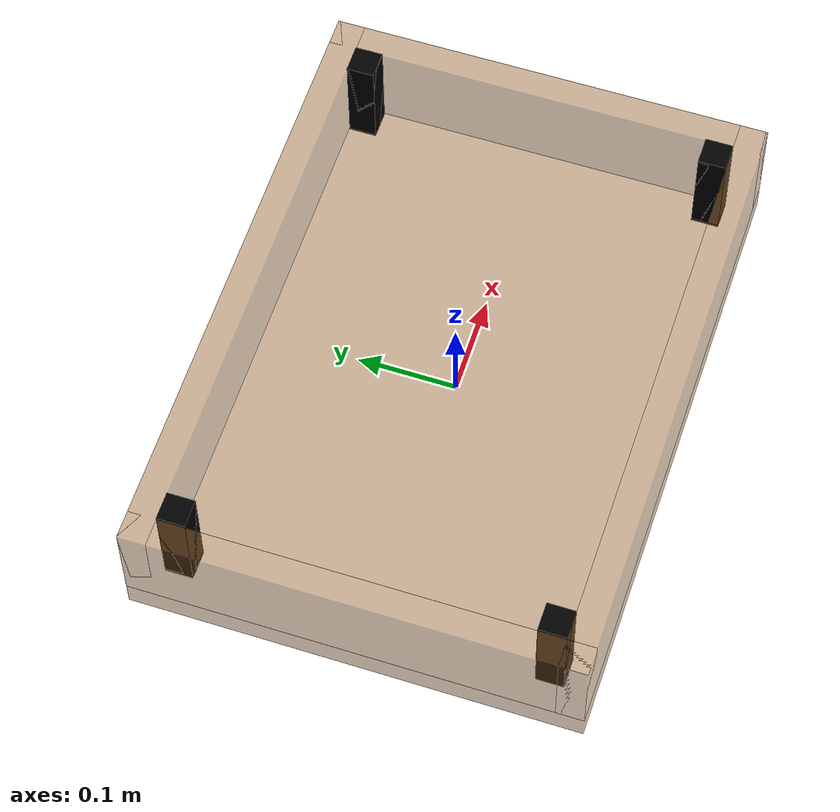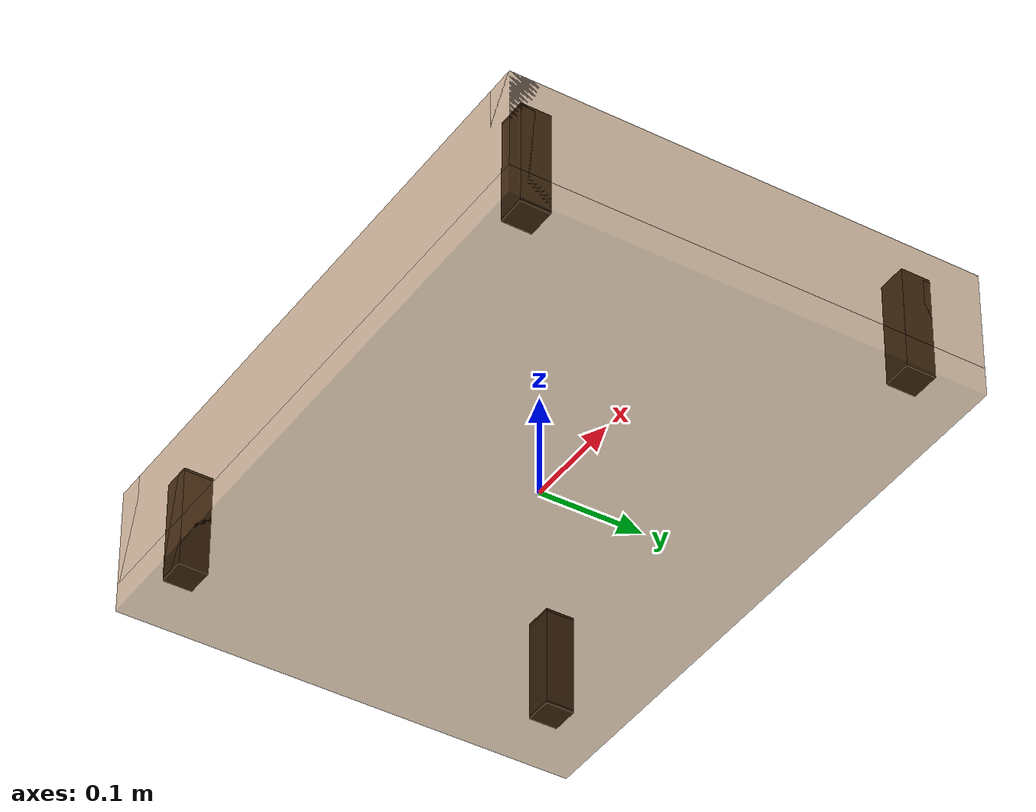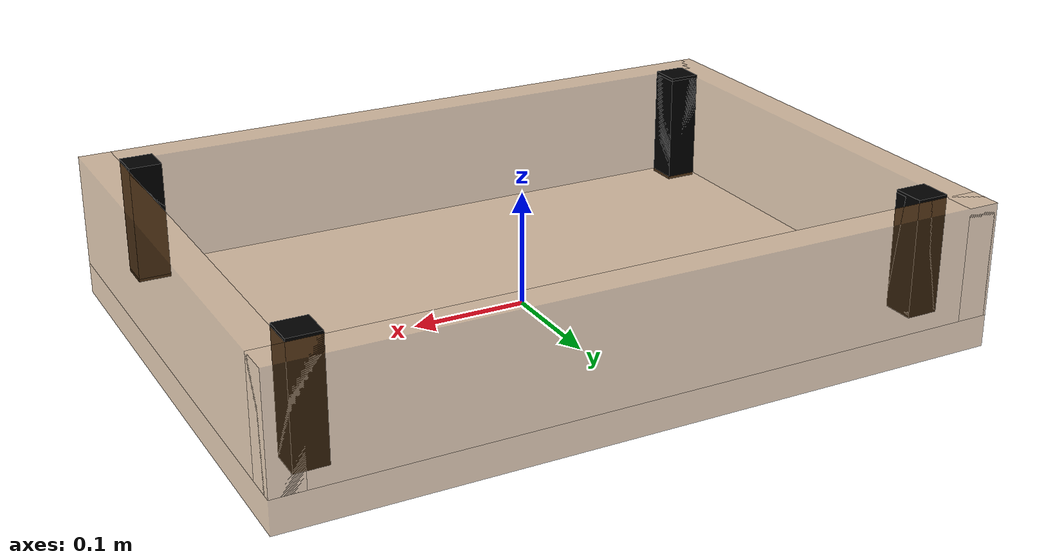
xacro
<robot name="box-setup"
    xmlns:xacro="https://www.ros.org/wiki/xacro">

    <xacro:include filename="$(find ros_basics_models)/urdf/utils/materials.xacro" />
    <xacro:include filename="$(find ros_basics_models)/urdf/utils/inertia.xacro" />

    <xacro:property name="support_beam_size" value="0.025"/>
    <xacro:property name="border_thickness" value="0.028"/>
    <xacro:property name="setup_dim_x" value="0.59"/>
    <xacro:property name="setup_dim_y" value="0.42"/>
    <xacro:property name="setup_dim_z" value="0.07"/>
    <xacro:property name="box_mass" value="2.6"/>

    <link name="world"/>

    <joint name="world_joint" type="fixed">
        <parent link="world"/>
        <child link="setup"/>
    </joint>
    <joint name="sticker_joint" type="fixed">
        <parent link="setup"/>
        <child link="stickers"/>
    </joint>

    <link name="setup">
        <visual>
            <origin xyz="0 0 0"/>
            <geometry>
                <box size="${setup_dim_x + border_thickness} ${setup_dim_y + border_thickness} ${border_thickness}"/>
            </geometry>
            <material name="brown"/>
        </visual>
        <collision>
            <origin xyz="0 0 0"/>
            <geometry>
                <box size="${setup_dim_x + border_thickness} ${setup_dim_y + border_thickness} ${border_thickness}"/>
            </geometry>
        </collision>

        <visual>
            <origin xyz="0 -${(setup_dim_y)/2} ${setup_dim_z - border_thickness/4}"/>
            <geometry>
                <box size="${setup_dim_x + border_thickness} ${border_thickness} ${setup_dim_z + border_thickness}"/>
            </geometry>
            <material name="brown"/>
        </visual>
        <collision>
            <origin xyz="0 -${(setup_dim_y)/2} ${setup_dim_z - border_thickness/4}"/>
            <geometry>
                <box size="${setup_dim_x + border_thickness} ${border_thickness} ${setup_dim_z + border_thickness}"/>
            </geometry>
        </collision>

        <visual>
            <origin xyz="0 ${(setup_dim_y)/2} ${setup_dim_z - border_thickness/4}"/>
            <geometry>
                <box size="${setup_dim_x + border_thickness} ${border_thickness} ${setup_dim_z + border_thickness}"/>
            </geometry>
            <material name="brown"/>
        </visual>
        <collision>
            <origin xyz="0 ${(setup_dim_y)/2} ${setup_dim_z - border_thickness/4}"/>
            <geometry>
                <box size="${setup_dim_x + border_thickness} ${border_thickness} ${setup_dim_z + border_thickness}"/>
            </geometry>
        </collision>

        <visual>
            <origin xyz="${(setup_dim_x)/2} 0  ${setup_dim_z - border_thickness/4}"/>
            <geometry>
                <box size="${border_thickness} ${setup_dim_y + border_thickness} ${setup_dim_z + border_thickness}"/>
            </geometry>
            <material name="brown"/>
        </visual>
        <collision>
            <origin xyz="${(setup_dim_x)/2} 0  ${setup_dim_z - border_thickness/4}"/>
            <geometry>
                <box size="${border_thickness} ${setup_dim_y + border_thickness} ${setup_dim_z + border_thickness}"/>
            </geometry>
        </collision>

        <visual>
            <origin xyz="-${(setup_dim_x)/2} 0  ${setup_dim_z - border_thickness/4}"/>
            <geometry>
                <box size="${border_thickness} ${setup_dim_y + border_thickness} ${setup_dim_z + border_thickness}"/>
            </geometry>
            <material name="brown"/>
        </visual>
        <collision>
            <origin xyz="-${(setup_dim_x)/2} 0  ${setup_dim_z - border_thickness/4}"/>
            <geometry>
                <box size="${border_thickness} ${setup_dim_y + border_thickness} ${setup_dim_z + border_thickness}"/>
            </geometry>
        </collision>

        <visual>
            <origin xyz="-${setup_dim_x/2 - border_thickness} -${setup_dim_y/2 - border_thickness}  ${setup_dim_z - border_thickness/4}"/>
            <geometry>
                <box size="${border_thickness} ${border_thickness} ${setup_dim_z + border_thickness}"/>
            </geometry>
            <material name="black"/>
        </visual>
        <collision>
            <origin xyz="-${setup_dim_x/2 - border_thickness} -${setup_dim_y/2 - border_thickness}  ${setup_dim_z - border_thickness/4}"/>
            <geometry>
                <box size="${border_thickness} ${border_thickness} ${setup_dim_z + border_thickness}"/>
            </geometry>
        </collision>

        <visual>
            <origin xyz="${setup_dim_x/2 - border_thickness} -${setup_dim_y/2 - border_thickness}  ${setup_dim_z - border_thickness/4}"/>
            <geometry>
                <box size="${border_thickness} ${border_thickness} ${setup_dim_z + border_thickness}"/>
            </geometry>
            <material name="black"/>
        </visual>
        <collision>
            <origin xyz="${setup_dim_x/2 - border_thickness} -${setup_dim_y/2 - border_thickness}  ${setup_dim_z - border_thickness/4}"/>
            <geometry>
                <box size="${border_thickness} ${border_thickness} ${setup_dim_z + border_thickness}"/>
            </geometry>
        </collision>

        <visual>
            <origin xyz="${setup_dim_x/2 - border_thickness} ${setup_dim_y/2 - border_thickness}  ${setup_dim_z - border_thickness/4}"/>
            <geometry>
                <box size="${border_thickness} ${border_thickness} ${setup_dim_z + border_thickness}"/>
            </geometry>
            <material name="black"/>
        </visual>
        <collision>
            <origin xyz="${setup_dim_x/2 - border_thickness} ${setup_dim_y/2 - border_thickness}  ${setup_dim_z - border_thickness/4}"/>
            <geometry>
                <box size="${border_thickness} ${border_thickness} ${setup_dim_z + border_thickness}"/>
            </geometry>
        </collision>

        <visual>
            <origin xyz="-${setup_dim_x/2 - border_thickness} ${setup_dim_y/2 - border_thickness}  ${setup_dim_z - border_thickness/4}"/>
            <geometry>
                <box size="${border_thickness} ${border_thickness} ${setup_dim_z + border_thickness}"/>
            </geometry>
            <material name="black"/>
        </visual>
        <collision>
            <origin xyz="-${setup_dim_x/2 - border_thickness} ${setup_dim_y/2 - border_thickness}  ${setup_dim_z - border_thickness/4}"/>
            <geometry>
                <box size="${border_thickness} ${border_thickness} ${setup_dim_z + border_thickness}"/>
            </geometry>
        </collision>

        <inertial>
            <mass value="${box_mass}"/>
            <xacro:box_inertia mass="${box_mass}" x="${setup_dim_x + border_thickness}" y="${setup_dim_y + border_thickness}" z="${border_thickness}" />
        </inertial>
    </link>

    <link name="stickers">
        <visual>
            <origin xyz="-${setup_dim_x/2 - border_thickness} -${setup_dim_y/2 - border_thickness}  ${setup_dim_z - border_thickness/4}"/>
            <geometry>
                <box size="${border_thickness} ${border_thickness} ${setup_dim_z + border_thickness + 0.005}"/>
            </geometry>
            <material name="black"/>
        </visual>
        <collision>
            <origin xyz="-${setup_dim_x/2 - border_thickness} -${setup_dim_y/2 - border_thickness}  ${setup_dim_z - border_thickness/4}"/>
            <geometry>
                <box size="${border_thickness} ${border_thickness} ${setup_dim_z + border_thickness + 0.005}"/>
            </geometry>
        </collision>

        <visual>
            <origin xyz="${setup_dim_x/2 - border_thickness} -${setup_dim_y/2 - border_thickness}  ${setup_dim_z - border_thickness/4}"/>
            <geometry>
                <box size="${border_thickness} ${border_thickness} ${setup_dim_z + border_thickness + 0.005}"/>
            </geometry>
            <material name="black"/>
        </visual>
        <collision>
            <origin xyz="${setup_dim_x/2 - border_thickness} -${setup_dim_y/2 - border_thickness}  ${setup_dim_z - border_thickness/4}"/>
            <geometry>
                <box size="${border_thickness} ${border_thickness} ${setup_dim_z + border_thickness + 0.005}"/>
            </geometry>
        </collision>

        <visual>
            <origin xyz="${setup_dim_x/2 - border_thickness} ${setup_dim_y/2 - border_thickness}  ${setup_dim_z - border_thickness/4}"/>
            <geometry>
                <box size="${border_thickness} ${border_thickness} ${setup_dim_z + border_thickness + 0.005}"/>
            </geometry>
            <material name="black"/>
        </visual>
        <collision>
            <origin xyz="${setup_dim_x/2 - border_thickness} ${setup_dim_y/2 - border_thickness}  ${setup_dim_z - border_thickness/4}"/>
            <geometry>
                <box size="${border_thickness} ${border_thickness} ${setup_dim_z + border_thickness + 0.005}"/>
            </geometry>
        </collision>

        <visual>
            <origin xyz="-${setup_dim_x/2 - border_thickness} ${setup_dim_y/2 - border_thickness}  ${setup_dim_z - border_thickness/4}"/>
            <geometry>
                <box size="${border_thickness} ${border_thickness} ${setup_dim_z + border_thickness + 0.005}"/>
            </geometry>
            <material name="black"/>
        </visual>
        <collision>
            <origin xyz="-${setup_dim_x/2 - border_thickness} ${setup_dim_y/2 - border_thickness}  ${setup_dim_z - border_thickness/4}"/>
            <geometry>
                <box size="${border_thickness} ${border_thickness} ${setup_dim_z + border_thickness + 0.005}"/>
            </geometry>
        </collision>
    </link>

    <gazebo reference="setup">
        <material>Gazebo/WoodFloor</material>
    </gazebo>

    <gazebo reference="stickers">
        <material>Gazebo/Black</material>
    </gazebo>

    <gazebo reference="pitch">
        <material>Gazebo/Grass</material>
    </gazebo>

</robot>

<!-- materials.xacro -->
<robot>
	<material name="white">
		<color rgba="1 1 1 0.8" />
	</material>
	<material name="black">
		<color rgba="0 0 0 1" />
	</material>
	<material name="blue">
		<color rgba="0 0 0.8 1" />
	</material>
	<material name="yellow">
		<color rgba="1 1 0 1" />
	</material>
	<material name="green">
		<color rgba="0 1 0 1" />
	</material>
	<material name="brown">
		<color rgba="${153/255} ${102/255} ${51/255} 0.5"/>
	</material>
</robot>

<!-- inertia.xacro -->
<robot xmlns:xacro="https://www.ros.org/wiki/xacro">

	<xacro:property name="mass" value="1"/>
	<xacro:property name="r" value="1"/>
	<xacro:property name="h" value="1"/>
	<xacro:property name="x" value="0"/>
	<xacro:property name="y" value="0"/>
	<xacro:property name="z" value="0"/>

	<xacro:macro name="cylinder_inertia" params="mass r h">
		<inertia ixx="${mass*(3*r*r+h*h)/12}" ixy="0" ixz="0" iyy="${mass*(3*r*r+h*h)/12}" iyz="0" izz="${mass*r*r/2}" />
	</xacro:macro>

	<xacro:macro name="box_inertia" params="mass x y z">
		<inertia ixx="${mass*(y*y+z*z)/12}" ixy="0" ixz="0" iyy="${mass*(x*x+z*z)/12}" iyz="0" izz="${mass*(x*x+z*z)/12}" />
	</xacro:macro>

	<xacro:macro name="sphere_inertia" params="mass r">
		<inertia ixx="${2*mass*r*r/5}" ixy="0" ixz="0" iyy="${2*mass*r*r/5}" iyz="0" izz="${2*mass*r*r/5}" />
	</xacro:macro>

</robot>
